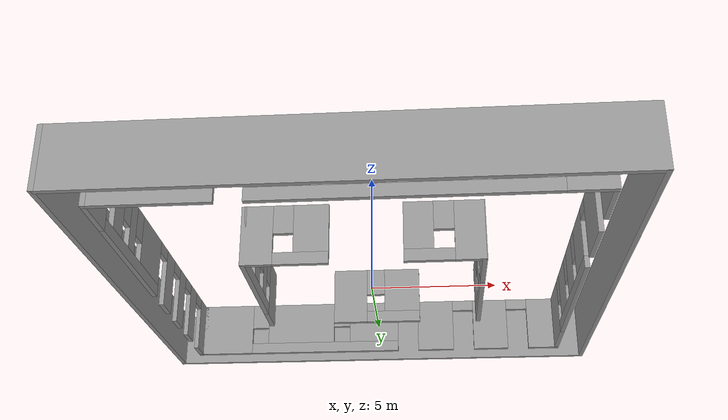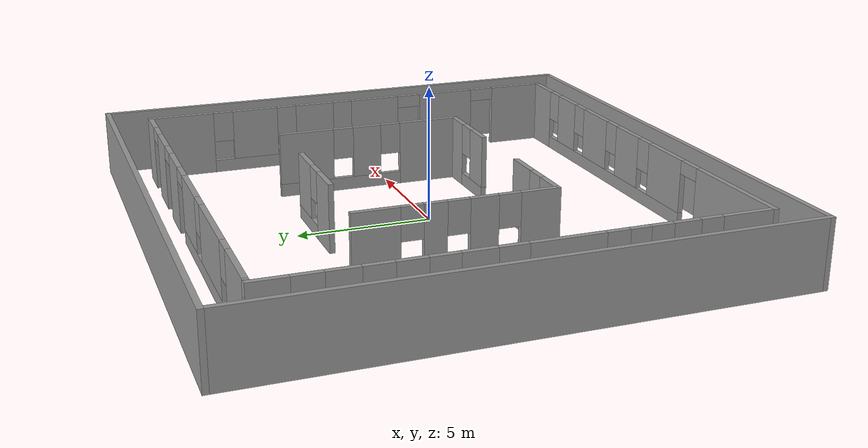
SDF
<?xml version='1.0'?>
<sdf version='1.4'>
  <model name='SalaSuporteFormacao2'>
    <link name='Wall_18'>
      <pose>-0.259506 8.74323 0 0 -0 0</pose>
      <visual name='Wall_18_Visual_0'>
        <pose>-7.57134 0 1.25 0 -0 0</pose>
        <geometry>
          <box>
            <size>2.5159 0.2 2.5</size>
          </box>
        </geometry>
        <material>
          <script>
            <uri>file://media/materials/scripts/gazebo.material</uri>
            <name>Gazebo/Grey</name>
          </script>
        </material>
      </visual>
      <collision name='Wall_18_Collision_0'>
        <geometry>
          <box>
            <size>2.5159 0.2 2.5</size>
          </box>
        </geometry>
        <pose>-7.57134 0 1.25 0 -0 0</pose>
      </collision>
      <visual name='Wall_18_Visual_1'>
        <pose>2.85613 0 1.25 0 -0 0</pose>
        <geometry>
          <box>
            <size>1.73545 0.2 2.5</size>
          </box>
        </geometry>
        <material>
          <script>
            <uri>file://media/materials/scripts/gazebo.material</uri>
            <name>Gazebo/Grey</name>
          </script>
        </material>
      </visual>
      <collision name='Wall_18_Collision_1'>
        <geometry>
          <box>
            <size>1.73545 0.2 2.5</size>
          </box>
        </geometry>
        <pose>2.85613 0 1.25 0 -0 0</pose>
      </collision>
      <visual name='Wall_18_Visual_2'>
        <pose>5.55135 0 1.25 0 -0 0</pose>
        <geometry>
          <box>
            <size>1.65499 0.2 2.5</size>
          </box>
        </geometry>
        <material>
          <script>
            <uri>file://media/materials/scripts/gazebo.material</uri>
            <name>Gazebo/Grey</name>
          </script>
        </material>
      </visual>
      <collision name='Wall_18_Collision_2'>
        <geometry>
          <box>
            <size>1.65499 0.2 2.5</size>
          </box>
        </geometry>
        <pose>5.55135 0 1.25 0 -0 0</pose>
      </collision>
      <visual name='Wall_18_Visual_3'>
        <pose>8.10407 0 1.25 0 -0 0</pose>
        <geometry>
          <box>
            <size>1.45045 0.2 2.5</size>
          </box>
        </geometry>
        <material>
          <script>
            <uri>file://media/materials/scripts/gazebo.material</uri>
            <name>Gazebo/Grey</name>
          </script>
        </material>
      </visual>
      <collision name='Wall_18_Collision_3'>
        <geometry>
          <box>
            <size>1.45045 0.2 2.5</size>
          </box>
        </geometry>
        <pose>8.10407 0 1.25 0 -0 0</pose>
      </collision>
      <visual name='Wall_18_Visual_4'>
        <pose>-2.66249 0 0.25 0 -0 0</pose>
        <geometry>
          <box>
            <size>7.30179 0.2 0.5</size>
          </box>
        </geometry>
        <material>
          <script>
            <uri>file://media/materials/scripts/gazebo.material</uri>
            <name>Gazebo/Grey</name>
          </script>
        </material>
      </visual>
      <collision name='Wall_18_Collision_4'>
        <geometry>
          <box>
            <size>7.30179 0.2 0.5</size>
          </box>
        </geometry>
        <pose>-2.66249 0 0.25 0 -0 0</pose>
      </collision>
      <visual name='Wall_18_Visual_5'>
        <pose>-3.86181 0 1.5 0 -0 0</pose>
        <geometry>
          <box>
            <size>3.30317 0.2 2</size>
          </box>
        </geometry>
        <material>
          <script>
            <uri>file://media/materials/scripts/gazebo.material</uri>
            <name>Gazebo/Grey</name>
          </script>
        </material>
      </visual>
      <collision name='Wall_18_Collision_5'>
        <geometry>
          <box>
            <size>3.30317 0.2 2</size>
          </box>
        </geometry>
        <pose>-3.86181 0 1.5 0 -0 0</pose>
      </collision>
      <visual name='Wall_18_Visual_6'>
        <pose>-0.210909 0 1.5 0 -0 0</pose>
        <geometry>
          <box>
            <size>2.39863 0.2 2</size>
          </box>
        </geometry>
        <material>
          <script>
            <uri>file://media/materials/scripts/gazebo.material</uri>
            <name>Gazebo/Grey</name>
          </script>
        </material>
      </visual>
      <collision name='Wall_18_Collision_6'>
        <geometry>
          <box>
            <size>2.39863 0.2 2</size>
          </box>
        </geometry>
        <pose>-0.210909 0 1.5 0 -0 0</pose>
      </collision>
      <visual name='Wall_18_Visual_7'>
        <pose>-5.91339 0 1.9 0 -0 0</pose>
        <geometry>
          <box>
            <size>0.8 0.2 1.2</size>
          </box>
        </geometry>
        <material>
          <script>
            <uri>file://media/materials/scripts/gazebo.material</uri>
            <name>Gazebo/Grey</name>
          </script>
        </material>
      </visual>
      <collision name='Wall_18_Collision_7'>
        <geometry>
          <box>
            <size>0.8 0.2 1.2</size>
          </box>
        </geometry>
        <pose>-5.91339 0 1.9 0 -0 0</pose>
      </collision>
      <visual name='Wall_18_Visual_8'>
        <pose>-1.81022 0 1.9 0 -0 0</pose>
        <geometry>
          <box>
            <size>0.8 0.2 1.2</size>
          </box>
        </geometry>
        <material>
          <script>
            <uri>file://media/materials/scripts/gazebo.material</uri>
            <name>Gazebo/Grey</name>
          </script>
        </material>
      </visual>
      <collision name='Wall_18_Collision_8'>
        <geometry>
          <box>
            <size>0.8 0.2 1.2</size>
          </box>
        </geometry>
        <pose>-1.81022 0 1.9 0 -0 0</pose>
      </collision>
      <visual name='Wall_18_Visual_9'>
        <pose>4.22385 0 2.25 0 -0 0</pose>
        <geometry>
          <box>
            <size>1 0.2 0.5</size>
          </box>
        </geometry>
        <material>
          <script>
            <uri>file://media/materials/scripts/gazebo.material</uri>
            <name>Gazebo/Grey</name>
          </script>
        </material>
      </visual>
      <collision name='Wall_18_Collision_9'>
        <geometry>
          <box>
            <size>1 0.2 0.5</size>
          </box>
        </geometry>
        <pose>4.22385 0 2.25 0 -0 0</pose>
      </collision>
      <visual name='Wall_18_Visual_10'>
        <pose>6.87884 0 2.25 0 -0 0</pose>
        <geometry>
          <box>
            <size>1 0.2 0.5</size>
          </box>
        </geometry>
        <material>
          <script>
            <uri>file://media/materials/scripts/gazebo.material</uri>
            <name>Gazebo/Grey</name>
          </script>
        </material>
      </visual>
      <collision name='Wall_18_Collision_10'>
        <geometry>
          <box>
            <size>1 0.2 0.5</size>
          </box>
        </geometry>
        <pose>6.87884 0 2.25 0 -0 0</pose>
      </collision>
      <visual name='Wall_18_Visual_11'>
        <pose>1.4884 0 2.25 0 -0 0</pose>
        <geometry>
          <box>
            <size>1 0.2 0.5</size>
          </box>
        </geometry>
        <material>
          <script>
            <uri>file://media/materials/scripts/gazebo.material</uri>
            <name>Gazebo/Grey</name>
          </script>
        </material>
      </visual>
      <collision name='Wall_18_Collision_11'>
        <geometry>
          <box>
            <size>1 0.2 0.5</size>
          </box>
        </geometry>
        <pose>1.4884 0 2.25 0 -0 0</pose>
      </collision>
    </link>
    <link name='Wall_19'>
      <pose>8.46978 0.215071 0 0 0 -1.5708</pose>
      <visual name='Wall_19_Visual_0'>
        <pose>-7.32998 0 1.25 0 -0 0</pose>
        <geometry>
          <box>
            <size>2.59635 0.2 2.5</size>
          </box>
        </geometry>
        <material>
          <script>
            <uri>file://media/materials/scripts/gazebo.material</uri>
            <name>Gazebo/Grey</name>
          </script>
        </material>
      </visual>
      <collision name='Wall_19_Collision_0'>
        <geometry>
          <box>
            <size>2.59635 0.2 2.5</size>
          </box>
        </geometry>
        <pose>-7.32998 0 1.25 0 -0 0</pose>
      </collision>
      <visual name='Wall_19_Visual_1'>
        <pose>4.10317 0 1.25 0 -0 0</pose>
        <geometry>
          <box>
            <size>2.37908 0.2 2.5</size>
          </box>
        </geometry>
        <material>
          <script>
            <uri>file://media/materials/scripts/gazebo.material</uri>
            <name>Gazebo/Grey</name>
          </script>
        </material>
      </visual>
      <collision name='Wall_19_Collision_1'>
        <geometry>
          <box>
            <size>2.37908 0.2 2.5</size>
          </box>
        </geometry>
        <pose>4.10317 0 1.25 0 -0 0</pose>
      </collision>
      <visual name='Wall_19_Visual_2'>
        <pose>7.46043 0 1.25 0 -0 0</pose>
        <geometry>
          <box>
            <size>2.33545 0.2 2.5</size>
          </box>
        </geometry>
        <material>
          <script>
            <uri>file://media/materials/scripts/gazebo.material</uri>
            <name>Gazebo/Grey</name>
          </script>
        </material>
      </visual>
      <collision name='Wall_19_Collision_2'>
        <geometry>
          <box>
            <size>2.33545 0.2 2.5</size>
          </box>
        </geometry>
        <pose>7.46043 0 1.25 0 -0 0</pose>
      </collision>
      <visual name='Wall_19_Visual_3'>
        <pose>-2.05909 0 0.25 0 -0 0</pose>
        <geometry>
          <box>
            <size>7.94543 0.2 0.5</size>
          </box>
        </geometry>
        <material>
          <script>
            <uri>file://media/materials/scripts/gazebo.material</uri>
            <name>Gazebo/Grey</name>
          </script>
        </material>
      </visual>
      <collision name='Wall_19_Collision_3'>
        <geometry>
          <box>
            <size>7.94543 0.2 0.5</size>
          </box>
        </geometry>
        <pose>-2.05909 0 0.25 0 -0 0</pose>
      </collision>
      <visual name='Wall_19_Visual_4'>
        <pose>-4.3043 0 1.5 0 -0 0</pose>
        <geometry>
          <box>
            <size>1.85499 0.2 2</size>
          </box>
        </geometry>
        <material>
          <script>
            <uri>file://media/materials/scripts/gazebo.material</uri>
            <name>Gazebo/Grey</name>
          </script>
        </material>
      </visual>
      <collision name='Wall_19_Collision_4'>
        <geometry>
          <box>
            <size>1.85499 0.2 2</size>
          </box>
        </geometry>
        <pose>-4.3043 0 1.5 0 -0 0</pose>
      </collision>
      <visual name='Wall_19_Visual_5'>
        <pose>-1.76999 0 1.5 0 -0 0</pose>
        <geometry>
          <box>
            <size>1.61363 0.2 2</size>
          </box>
        </geometry>
        <material>
          <script>
            <uri>file://media/materials/scripts/gazebo.material</uri>
            <name>Gazebo/Grey</name>
          </script>
        </material>
      </visual>
      <collision name='Wall_19_Collision_5'>
        <geometry>
          <box>
            <size>1.61363 0.2 2</size>
          </box>
        </geometry>
        <pose>-1.76999 0 1.5 0 -0 0</pose>
      </collision>
      <visual name='Wall_19_Visual_6'>
        <pose>0.875224 0 1.5 0 -0 0</pose>
        <geometry>
          <box>
            <size>2.07681 0.2 2</size>
          </box>
        </geometry>
        <material>
          <script>
            <uri>file://media/materials/scripts/gazebo.material</uri>
            <name>Gazebo/Grey</name>
          </script>
        </material>
      </visual>
      <collision name='Wall_19_Collision_6'>
        <geometry>
          <box>
            <size>2.07681 0.2 2</size>
          </box>
        </geometry>
        <pose>0.875224 0 1.5 0 -0 0</pose>
      </collision>
      <visual name='Wall_19_Visual_7'>
        <pose>-5.6318 0 1.9 0 -0 0</pose>
        <geometry>
          <box>
            <size>0.8 0.2 1.2</size>
          </box>
        </geometry>
        <material>
          <script>
            <uri>file://media/materials/scripts/gazebo.material</uri>
            <name>Gazebo/Grey</name>
          </script>
        </material>
      </visual>
      <collision name='Wall_19_Collision_7'>
        <geometry>
          <box>
            <size>0.8 0.2 1.2</size>
          </box>
        </geometry>
        <pose>-5.6318 0 1.9 0 -0 0</pose>
      </collision>
      <visual name='Wall_19_Visual_8'>
        <pose>-2.97681 0 1.9 0 -0 0</pose>
        <geometry>
          <box>
            <size>0.8 0.2 1.2</size>
          </box>
        </geometry>
        <material>
          <script>
            <uri>file://media/materials/scripts/gazebo.material</uri>
            <name>Gazebo/Grey</name>
          </script>
        </material>
      </visual>
      <collision name='Wall_19_Collision_8'>
        <geometry>
          <box>
            <size>0.8 0.2 1.2</size>
          </box>
        </geometry>
        <pose>-2.97681 0 1.9 0 -0 0</pose>
      </collision>
      <visual name='Wall_19_Visual_9'>
        <pose>-0.56318 0 1.9 0 -0 0</pose>
        <geometry>
          <box>
            <size>0.8 0.2 1.2</size>
          </box>
        </geometry>
        <material>
          <script>
            <uri>file://media/materials/scripts/gazebo.material</uri>
            <name>Gazebo/Grey</name>
          </script>
        </material>
      </visual>
      <collision name='Wall_19_Collision_9'>
        <geometry>
          <box>
            <size>0.8 0.2 1.2</size>
          </box>
        </geometry>
        <pose>-0.56318 0 1.9 0 -0 0</pose>
      </collision>
      <visual name='Wall_19_Visual_10'>
        <pose>5.79271 0 2.25 0 -0 0</pose>
        <geometry>
          <box>
            <size>1 0.2 0.5</size>
          </box>
        </geometry>
        <material>
          <script>
            <uri>file://media/materials/scripts/gazebo.material</uri>
            <name>Gazebo/Grey</name>
          </script>
        </material>
      </visual>
      <collision name='Wall_19_Collision_10'>
        <geometry>
          <box>
            <size>1 0.2 0.5</size>
          </box>
        </geometry>
        <pose>5.79271 0 2.25 0 -0 0</pose>
      </collision>
      <visual name='Wall_19_Visual_11'>
        <pose>2.41363 0 2.25 0 -0 0</pose>
        <geometry>
          <box>
            <size>1 0.2 0.5</size>
          </box>
        </geometry>
        <material>
          <script>
            <uri>file://media/materials/scripts/gazebo.material</uri>
            <name>Gazebo/Grey</name>
          </script>
        </material>
      </visual>
      <collision name='Wall_19_Collision_11'>
        <geometry>
          <box>
            <size>1 0.2 0.5</size>
          </box>
        </geometry>
        <pose>2.41363 0 2.25 0 -0 0</pose>
      </collision>
    </link>
    <link name='Wall_20'>
      <pose>-0.339961 -8.31308 0 0 -0 3.14159</pose>
      <visual name='Wall_20_Visual_0'>
        <pose>-8.05407 0 1.25 0 -0 0</pose>
        <geometry>
          <box>
            <size>1.71136 0.2 2.5</size>
          </box>
        </geometry>
        <material>
          <script>
            <uri>file://media/materials/scripts/gazebo.material</uri>
            <name>Gazebo/Grey</name>
          </script>
        </material>
      </visual>
      <collision name='Wall_20_Collision_0'>
        <geometry>
          <box>
            <size>1.71136 0.2 2.5</size>
          </box>
        </geometry>
        <pose>-8.05407 0 1.25 0 -0 0</pose>
      </collision>
      <visual name='Wall_20_Visual_1'>
        <pose>6.65589 0 1.25 0 -0 0</pose>
        <geometry>
          <box>
            <size>4.50771 0.2 2.5</size>
          </box>
        </geometry>
        <material>
          <script>
            <uri>file://media/materials/scripts/gazebo.material</uri>
            <name>Gazebo/Grey</name>
          </script>
        </material>
      </visual>
      <collision name='Wall_20_Collision_1'>
        <geometry>
          <box>
            <size>4.50771 0.2 2.5</size>
          </box>
        </geometry>
        <pose>6.65589 0 1.25 0 -0 0</pose>
      </collision>
      <visual name='Wall_20_Visual_2'>
        <pose>-1.89818 0 0.25 0 -0 0</pose>
        <geometry>
          <box>
            <size>10.6004 0.2 0.5</size>
          </box>
        </geometry>
        <material>
          <script>
            <uri>file://media/materials/scripts/gazebo.material</uri>
            <name>Gazebo/Grey</name>
          </script>
        </material>
      </visual>
      <collision name='Wall_20_Collision_2'>
        <geometry>
          <box>
            <size>10.6004 0.2 0.5</size>
          </box>
        </geometry>
        <pose>-1.89818 0 0.25 0 -0 0</pose>
      </collision>
      <visual name='Wall_20_Visual_3'>
        <pose>-5.6318 0 1.5 0 -0 0</pose>
        <geometry>
          <box>
            <size>1.53317 0.2 2</size>
          </box>
        </geometry>
        <material>
          <script>
            <uri>file://media/materials/scripts/gazebo.material</uri>
            <name>Gazebo/Grey</name>
          </script>
        </material>
      </visual>
      <collision name='Wall_20_Collision_3'>
        <geometry>
          <box>
            <size>1.53317 0.2 2</size>
          </box>
        </geometry>
        <pose>-5.6318 0 1.5 0 -0 0</pose>
      </collision>
      <visual name='Wall_20_Visual_4'>
        <pose>-3.09749 0 1.5 0 -0 0</pose>
        <geometry>
          <box>
            <size>1.93545 0.2 2</size>
          </box>
        </geometry>
        <material>
          <script>
            <uri>file://media/materials/scripts/gazebo.material</uri>
            <name>Gazebo/Grey</name>
          </script>
        </material>
      </visual>
      <collision name='Wall_20_Collision_4'>
        <geometry>
          <box>
            <size>1.93545 0.2 2</size>
          </box>
        </geometry>
        <pose>-3.09749 0 1.5 0 -0 0</pose>
      </collision>
      <visual name='Wall_20_Visual_5'>
        <pose>-0.482726 0 1.5 0 -0 0</pose>
        <geometry>
          <box>
            <size>1.69408 0.2 2</size>
          </box>
        </geometry>
        <material>
          <script>
            <uri>file://media/materials/scripts/gazebo.material</uri>
            <name>Gazebo/Grey</name>
          </script>
        </material>
      </visual>
      <collision name='Wall_20_Collision_5'>
        <geometry>
          <box>
            <size>1.69408 0.2 2</size>
          </box>
        </geometry>
        <pose>-0.482726 0 1.5 0 -0 0</pose>
      </collision>
      <visual name='Wall_20_Visual_6'>
        <pose>2.28317 0 1.5 0 -0 0</pose>
        <geometry>
          <box>
            <size>2.23772 0.2 2</size>
          </box>
        </geometry>
        <material>
          <script>
            <uri>file://media/materials/scripts/gazebo.material</uri>
            <name>Gazebo/Grey</name>
          </script>
        </material>
      </visual>
      <collision name='Wall_20_Collision_6'>
        <geometry>
          <box>
            <size>2.23772 0.2 2</size>
          </box>
        </geometry>
        <pose>2.28317 0 1.5 0 -0 0</pose>
      </collision>
      <visual name='Wall_20_Visual_7'>
        <pose>-6.79839 0 1.9 0 -0 0</pose>
        <geometry>
          <box>
            <size>0.8 0.2 1.2</size>
          </box>
        </geometry>
        <material>
          <script>
            <uri>file://media/materials/scripts/gazebo.material</uri>
            <name>Gazebo/Grey</name>
          </script>
        </material>
      </visual>
      <collision name='Wall_20_Collision_7'>
        <geometry>
          <box>
            <size>0.8 0.2 1.2</size>
          </box>
        </geometry>
        <pose>-6.79839 0 1.9 0 -0 0</pose>
      </collision>
      <visual name='Wall_20_Visual_8'>
        <pose>-4.46521 0 1.9 0 -0 0</pose>
        <geometry>
          <box>
            <size>0.8 0.2 1.2</size>
          </box>
        </geometry>
        <material>
          <script>
            <uri>file://media/materials/scripts/gazebo.material</uri>
            <name>Gazebo/Grey</name>
          </script>
        </material>
      </visual>
      <collision name='Wall_20_Collision_8'>
        <geometry>
          <box>
            <size>0.8 0.2 1.2</size>
          </box>
        </geometry>
        <pose>-4.46521 0 1.9 0 -0 0</pose>
      </collision>
      <visual name='Wall_20_Visual_9'>
        <pose>-1.72977 0 1.9 0 -0 0</pose>
        <geometry>
          <box>
            <size>0.8 0.2 1.2</size>
          </box>
        </geometry>
        <material>
          <script>
            <uri>file://media/materials/scripts/gazebo.material</uri>
            <name>Gazebo/Grey</name>
          </script>
        </material>
      </visual>
      <collision name='Wall_20_Collision_9'>
        <geometry>
          <box>
            <size>0.8 0.2 1.2</size>
          </box>
        </geometry>
        <pose>-1.72977 0 1.9 0 -0 0</pose>
      </collision>
      <visual name='Wall_20_Visual_10'>
        <pose>0.764316 0 1.9 0 -0 0</pose>
        <geometry>
          <box>
            <size>0.8 0.2 1.2</size>
          </box>
        </geometry>
        <material>
          <script>
            <uri>file://media/materials/scripts/gazebo.material</uri>
            <name>Gazebo/Grey</name>
          </script>
        </material>
      </visual>
      <collision name='Wall_20_Collision_10'>
        <geometry>
          <box>
            <size>0.8 0.2 1.2</size>
          </box>
        </geometry>
        <pose>0.764316 0 1.9 0 -0 0</pose>
      </collision>
      <visual name='Wall_20_Visual_11'>
        <pose>3.90203 0 2.25 0 -0 0</pose>
        <geometry>
          <box>
            <size>1 0.2 0.5</size>
          </box>
        </geometry>
        <material>
          <script>
            <uri>file://media/materials/scripts/gazebo.material</uri>
            <name>Gazebo/Grey</name>
          </script>
        </material>
      </visual>
      <collision name='Wall_20_Collision_11'>
        <geometry>
          <box>
            <size>1 0.2 0.5</size>
          </box>
        </geometry>
        <pose>3.90203 0 2.25 0 -0 0</pose>
      </collision>
    </link>
    <link name='Wall_21'>
      <pose>-9.14971 0.215071 0 0 -0 1.5708</pose>
      <visual name='Wall_21_Visual_0'>
        <pose>-7.61157 0 1.25 0 -0 0</pose>
        <geometry>
          <box>
            <size>2.03317 0.2 2.5</size>
          </box>
        </geometry>
        <material>
          <script>
            <uri>file://media/materials/scripts/gazebo.material</uri>
            <name>Gazebo/Grey</name>
          </script>
        </material>
      </visual>
      <collision name='Wall_21_Collision_0'>
        <geometry>
          <box>
            <size>2.03317 0.2 2.5</size>
          </box>
        </geometry>
        <pose>-7.61157 0 1.25 0 -0 0</pose>
      </collision>
      <visual name='Wall_21_Visual_1'>
        <pose>1.64931 0 1.25 0 -0 0</pose>
        <geometry>
          <box>
            <size>1.17227 0.2 2.5</size>
          </box>
        </geometry>
        <material>
          <script>
            <uri>file://media/materials/scripts/gazebo.material</uri>
            <name>Gazebo/Grey</name>
          </script>
        </material>
      </visual>
      <collision name='Wall_21_Collision_1'>
        <geometry>
          <box>
            <size>1.17227 0.2 2.5</size>
          </box>
        </geometry>
        <pose>1.64931 0 1.25 0 -0 0</pose>
      </collision>
      <visual name='Wall_21_Visual_2'>
        <pose>3.74112 0 1.25 0 -0 0</pose>
        <geometry>
          <box>
            <size>1.01136 0.2 2.5</size>
          </box>
        </geometry>
        <material>
          <script>
            <uri>file://media/materials/scripts/gazebo.material</uri>
            <name>Gazebo/Grey</name>
          </script>
        </material>
      </visual>
      <collision name='Wall_21_Collision_2'>
        <geometry>
          <box>
            <size>1.01136 0.2 2.5</size>
          </box>
        </geometry>
        <pose>3.74112 0 1.25 0 -0 0</pose>
      </collision>
      <visual name='Wall_21_Visual_3'>
        <pose>5.79271 0 1.25 0 -0 0</pose>
        <geometry>
          <box>
            <size>1.09181 0.2 2.5</size>
          </box>
        </geometry>
        <material>
          <script>
            <uri>file://media/materials/scripts/gazebo.material</uri>
            <name>Gazebo/Grey</name>
          </script>
        </material>
      </visual>
      <collision name='Wall_21_Collision_3'>
        <geometry>
          <box>
            <size>1.09181 0.2 2.5</size>
          </box>
        </geometry>
        <pose>5.79271 0 1.25 0 -0 0</pose>
      </collision>
      <visual name='Wall_21_Visual_4'>
        <pose>7.98338 0 1.25 0 -0 0</pose>
        <geometry>
          <box>
            <size>1.28954 0.2 2.5</size>
          </box>
        </geometry>
        <material>
          <script>
            <uri>file://media/materials/scripts/gazebo.material</uri>
            <name>Gazebo/Grey</name>
          </script>
        </material>
      </visual>
      <collision name='Wall_21_Collision_4'>
        <geometry>
          <box>
            <size>1.28954 0.2 2.5</size>
          </box>
        </geometry>
        <pose>7.98338 0 1.25 0 -0 0</pose>
      </collision>
      <visual name='Wall_21_Visual_5'>
        <pose>-3.2659 0 0.25 0 -0 0</pose>
        <geometry>
          <box>
            <size>6.65816 0.2 0.5</size>
          </box>
        </geometry>
        <material>
          <script>
            <uri>file://media/materials/scripts/gazebo.material</uri>
            <name>Gazebo/Grey</name>
          </script>
        </material>
      </visual>
      <collision name='Wall_21_Collision_5'>
        <geometry>
          <box>
            <size>6.65816 0.2 0.5</size>
          </box>
        </geometry>
        <pose>-3.2659 0 0.25 0 -0 0</pose>
      </collision>
      <visual name='Wall_21_Visual_6'>
        <pose>-5.30998 0 1.5 0 -0 0</pose>
        <geometry>
          <box>
            <size>0.969994 0.2 2</size>
          </box>
        </geometry>
        <material>
          <script>
            <uri>file://media/materials/scripts/gazebo.material</uri>
            <name>Gazebo/Grey</name>
          </script>
        </material>
      </visual>
      <collision name='Wall_21_Collision_6'>
        <geometry>
          <box>
            <size>0.969994 0.2 2</size>
          </box>
        </geometry>
        <pose>-5.30998 0 1.5 0 -0 0</pose>
      </collision>
      <visual name='Wall_21_Visual_7'>
        <pose>-3.66067 0 1.5 0 -0 0</pose>
        <geometry>
          <box>
            <size>0.728631 0.2 2</size>
          </box>
        </geometry>
        <material>
          <script>
            <uri>file://media/materials/scripts/gazebo.material</uri>
            <name>Gazebo/Grey</name>
          </script>
        </material>
      </visual>
      <collision name='Wall_21_Collision_7'>
        <geometry>
          <box>
            <size>0.728631 0.2 2</size>
          </box>
        </geometry>
        <pose>-3.66067 0 1.5 0 -0 0</pose>
      </collision>
      <visual name='Wall_21_Visual_8'>
        <pose>-1.21659 0 1.5 0 -0 0</pose>
        <geometry>
          <box>
            <size>2.55953 0.2 2</size>
          </box>
        </geometry>
        <material>
          <script>
            <uri>file://media/materials/scripts/gazebo.material</uri>
            <name>Gazebo/Grey</name>
          </script>
        </material>
      </visual>
      <collision name='Wall_21_Collision_8'>
        <geometry>
          <box>
            <size>2.55953 0.2 2</size>
          </box>
        </geometry>
        <pose>-1.21659 0 1.5 0 -0 0</pose>
      </collision>
      <visual name='Wall_21_Visual_9'>
        <pose>-6.19498 0 1.9 0 -0 0</pose>
        <geometry>
          <box>
            <size>0.8 0.2 1.2</size>
          </box>
        </geometry>
        <material>
          <script>
            <uri>file://media/materials/scripts/gazebo.material</uri>
            <name>Gazebo/Grey</name>
          </script>
        </material>
      </visual>
      <collision name='Wall_21_Collision_9'>
        <geometry>
          <box>
            <size>0.8 0.2 1.2</size>
          </box>
        </geometry>
        <pose>-6.19498 0 1.9 0 -0 0</pose>
      </collision>
      <visual name='Wall_21_Visual_10'>
        <pose>-4.42499 0 1.9 0 -0 0</pose>
        <geometry>
          <box>
            <size>0.8 0.2 1.2</size>
          </box>
        </geometry>
        <material>
          <script>
            <uri>file://media/materials/scripts/gazebo.material</uri>
            <name>Gazebo/Grey</name>
          </script>
        </material>
      </visual>
      <collision name='Wall_21_Collision_10'>
        <geometry>
          <box>
            <size>0.8 0.2 1.2</size>
          </box>
        </geometry>
        <pose>-4.42499 0 1.9 0 -0 0</pose>
      </collision>
      <visual name='Wall_21_Visual_11'>
        <pose>-2.89635 0 1.9 0 -0 0</pose>
        <geometry>
          <box>
            <size>0.8 0.2 1.2</size>
          </box>
        </geometry>
        <material>
          <script>
            <uri>file://media/materials/scripts/gazebo.material</uri>
            <name>Gazebo/Grey</name>
          </script>
        </material>
      </visual>
      <collision name='Wall_21_Collision_11'>
        <geometry>
          <box>
            <size>0.8 0.2 1.2</size>
          </box>
        </geometry>
        <pose>-2.89635 0 1.9 0 -0 0</pose>
      </collision>
      <visual name='Wall_21_Visual_12'>
        <pose>2.73545 0 2.25 0 -0 0</pose>
        <geometry>
          <box>
            <size>1 0.2 0.5</size>
          </box>
        </geometry>
        <material>
          <script>
            <uri>file://media/materials/scripts/gazebo.material</uri>
            <name>Gazebo/Grey</name>
          </script>
        </material>
      </visual>
      <collision name='Wall_21_Collision_12'>
        <geometry>
          <box>
            <size>1 0.2 0.5</size>
          </box>
        </geometry>
        <pose>2.73545 0 2.25 0 -0 0</pose>
      </collision>
      <visual name='Wall_21_Visual_13'>
        <pose>4.7468 0 2.25 0 -0 0</pose>
        <geometry>
          <box>
            <size>1 0.2 0.5</size>
          </box>
        </geometry>
        <material>
          <script>
            <uri>file://media/materials/scripts/gazebo.material</uri>
            <name>Gazebo/Grey</name>
          </script>
        </material>
      </visual>
      <collision name='Wall_21_Collision_13'>
        <geometry>
          <box>
            <size>1 0.2 0.5</size>
          </box>
        </geometry>
        <pose>4.7468 0 2.25 0 -0 0</pose>
      </collision>
      <visual name='Wall_21_Visual_14'>
        <pose>6.83861 0 2.25 0 -0 0</pose>
        <geometry>
          <box>
            <size>1 0.2 0.5</size>
          </box>
        </geometry>
        <material>
          <script>
            <uri>file://media/materials/scripts/gazebo.material</uri>
            <name>Gazebo/Grey</name>
          </script>
        </material>
      </visual>
      <collision name='Wall_21_Collision_14'>
        <geometry>
          <box>
            <size>1 0.2 0.5</size>
          </box>
        </geometry>
        <pose>6.83861 0 2.25 0 -0 0</pose>
      </collision>
      <visual name='Wall_21_Visual_15'>
        <pose>0.56318 0 2.25 0 -0 0</pose>
        <geometry>
          <box>
            <size>1 0.2 0.5</size>
          </box>
        </geometry>
        <material>
          <script>
            <uri>file://media/materials/scripts/gazebo.material</uri>
            <name>Gazebo/Grey</name>
          </script>
        </material>
      </visual>
      <collision name='Wall_21_Collision_15'>
        <geometry>
          <box>
            <size>1 0.2 0.5</size>
          </box>
        </geometry>
        <pose>0.56318 0 2.25 0 -0 0</pose>
      </collision>
    </link>
    <link name='Wall_22'>
      <collision name='Wall_22_Collision'>
        <geometry>
          <box>
            <size>0.360909 0.2 2.5</size>
          </box>
        </geometry>
        <pose>0 0 1.25 0 -0 0</pose>
      </collision>
      <visual name='Wall_22_Visual'>
        <pose>0 0 1.25 0 -0 0</pose>
        <geometry>
          <box>
            <size>0.360909 0.2 2.5</size>
          </box>
        </geometry>
        <material>
          <script>
            <uri>file://media/materials/scripts/gazebo.material</uri>
            <name>Gazebo/Grey</name>
          </script>
        </material>
      </visual>
      <velocity_decay>
        <linear>0</linear>
        <angular>0</angular>
      </velocity_decay>
      <pose>-9.06925 8.74323 0 0 -0 0</pose>
    </link>
    <link name='Wall_26'>
      <pose>-4.8575 0.82437 0 0 0 -1.5708</pose>
      <visual name='Wall_26_Visual_0'>
        <pose>-2.84409 0 1.25 0 -0 0</pose>
        <geometry>
          <box>
            <size>1.68165 0.2 2.5</size>
          </box>
        </geometry>
        <material>
          <script>
            <uri>file://media/materials/scripts/gazebo.material</uri>
            <name>Gazebo/Grey</name>
          </script>
        </material>
      </visual>
      <collision name='Wall_26_Collision_0'>
        <geometry>
          <box>
            <size>1.68165 0.2 2.5</size>
          </box>
        </geometry>
        <pose>-2.84409 0 1.25 0 -0 0</pose>
      </collision>
      <visual name='Wall_26_Visual_1'>
        <pose>0.840823 0 0.25 0 -0 0</pose>
        <geometry>
          <box>
            <size>5.68817 0.2 0.5</size>
          </box>
        </geometry>
        <material>
          <script>
            <uri>file://media/materials/scripts/gazebo.material</uri>
            <name>Gazebo/Grey</name>
          </script>
        </material>
      </visual>
      <collision name='Wall_26_Collision_1'>
        <geometry>
          <box>
            <size>5.68817 0.2 0.5</size>
          </box>
        </geometry>
        <pose>0.840823 0 0.25 0 -0 0</pose>
      </collision>
      <visual name='Wall_26_Visual_2'>
        <pose>-0.795957 0 1.5 0 -0 0</pose>
        <geometry>
          <box>
            <size>0.814611 0.2 2</size>
          </box>
        </geometry>
        <material>
          <script>
            <uri>file://media/materials/scripts/gazebo.material</uri>
            <name>Gazebo/Grey</name>
          </script>
        </material>
      </visual>
      <collision name='Wall_26_Collision_2'>
        <geometry>
          <box>
            <size>0.814611 0.2 2</size>
          </box>
        </geometry>
        <pose>-0.795957 0 1.5 0 -0 0</pose>
      </collision>
      <visual name='Wall_26_Visual_3'>
        <pose>0.920988 0 1.5 0 -0 0</pose>
        <geometry>
          <box>
            <size>1.01928 0.2 2</size>
          </box>
        </geometry>
        <material>
          <script>
            <uri>file://media/materials/scripts/gazebo.material</uri>
            <name>Gazebo/Grey</name>
          </script>
        </material>
      </visual>
      <collision name='Wall_26_Collision_3'>
        <geometry>
          <box>
            <size>1.01928 0.2 2</size>
          </box>
        </geometry>
        <pose>0.920988 0 1.5 0 -0 0</pose>
      </collision>
      <visual name='Wall_26_Visual_4'>
        <pose>2.95777 0 1.5 0 -0 0</pose>
        <geometry>
          <box>
            <size>1.45428 0.2 2</size>
          </box>
        </geometry>
        <material>
          <script>
            <uri>file://media/materials/scripts/gazebo.material</uri>
            <name>Gazebo/Grey</name>
          </script>
        </material>
      </visual>
      <collision name='Wall_26_Collision_4'>
        <geometry>
          <box>
            <size>1.45428 0.2 2</size>
          </box>
        </geometry>
        <pose>2.95777 0 1.5 0 -0 0</pose>
      </collision>
      <visual name='Wall_26_Visual_5'>
        <pose>-1.60326 0 1.9 0 -0 0</pose>
        <geometry>
          <box>
            <size>0.8 0.2 1.2</size>
          </box>
        </geometry>
        <material>
          <script>
            <uri>file://media/materials/scripts/gazebo.material</uri>
            <name>Gazebo/Grey</name>
          </script>
        </material>
      </visual>
      <collision name='Wall_26_Collision_5'>
        <geometry>
          <box>
            <size>0.8 0.2 1.2</size>
          </box>
        </geometry>
        <pose>-1.60326 0 1.9 0 -0 0</pose>
      </collision>
      <visual name='Wall_26_Visual_6'>
        <pose>0.011348 0 1.9 0 -0 0</pose>
        <geometry>
          <box>
            <size>0.8 0.2 1.2</size>
          </box>
        </geometry>
        <material>
          <script>
            <uri>file://media/materials/scripts/gazebo.material</uri>
            <name>Gazebo/Grey</name>
          </script>
        </material>
      </visual>
      <collision name='Wall_26_Collision_6'>
        <geometry>
          <box>
            <size>0.8 0.2 1.2</size>
          </box>
        </geometry>
        <pose>0.011348 0 1.9 0 -0 0</pose>
      </collision>
      <visual name='Wall_26_Visual_7'>
        <pose>1.83063 0 1.9 0 -0 0</pose>
        <geometry>
          <box>
            <size>0.8 0.2 1.2</size>
          </box>
        </geometry>
        <material>
          <script>
            <uri>file://media/materials/scripts/gazebo.material</uri>
            <name>Gazebo/Grey</name>
          </script>
        </material>
      </visual>
      <collision name='Wall_26_Collision_7'>
        <geometry>
          <box>
            <size>0.8 0.2 1.2</size>
          </box>
        </geometry>
        <pose>1.83063 0 1.9 0 -0 0</pose>
      </collision>
    </link>
    <link name='Wall_27'>
      <pose>-3.22423 -2.76054 0 0 -0 0</pose>
      <visual name='Wall_27_Visual_0'>
        <pose>-1.09793 0 1.25 0 -0 0</pose>
        <geometry>
          <box>
            <size>1.27067 0.2 2.5</size>
          </box>
        </geometry>
        <material>
          <script>
            <uri>file://media/materials/scripts/gazebo.material</uri>
            <name>Gazebo/Grey</name>
          </script>
        </material>
      </visual>
      <collision name='Wall_27_Collision_0'>
        <geometry>
          <box>
            <size>1.27067 0.2 2.5</size>
          </box>
        </geometry>
        <pose>-1.09793 0 1.25 0 -0 0</pose>
      </collision>
      <visual name='Wall_27_Visual_1'>
        <pose>0.635337 0 0.25 0 -0 0</pose>
        <geometry>
          <box>
            <size>2.19587 0.2 0.5</size>
          </box>
        </geometry>
        <material>
          <script>
            <uri>file://media/materials/scripts/gazebo.material</uri>
            <name>Gazebo/Grey</name>
          </script>
        </material>
      </visual>
      <collision name='Wall_27_Collision_1'>
        <geometry>
          <box>
            <size>2.19587 0.2 0.5</size>
          </box>
        </geometry>
        <pose>0.635337 0 0.25 0 -0 0</pose>
      </collision>
      <visual name='Wall_27_Visual_2'>
        <pose>1.03534 0 1.5 0 -0 0</pose>
        <geometry>
          <box>
            <size>1.39587 0.2 2</size>
          </box>
        </geometry>
        <material>
          <script>
            <uri>file://media/materials/scripts/gazebo.material</uri>
            <name>Gazebo/Grey</name>
          </script>
        </material>
      </visual>
      <collision name='Wall_27_Collision_2'>
        <geometry>
          <box>
            <size>1.39587 0.2 2</size>
          </box>
        </geometry>
        <pose>1.03534 0 1.5 0 -0 0</pose>
      </collision>
      <visual name='Wall_27_Visual_3'>
        <pose>-0.062596 0 1.9 0 -0 0</pose>
        <geometry>
          <box>
            <size>0.8 0.2 1.2</size>
          </box>
        </geometry>
        <material>
          <script>
            <uri>file://media/materials/scripts/gazebo.material</uri>
            <name>Gazebo/Grey</name>
          </script>
        </material>
      </visual>
      <collision name='Wall_27_Collision_3'>
        <geometry>
          <box>
            <size>0.8 0.2 1.2</size>
          </box>
        </geometry>
        <pose>-0.062596 0 1.9 0 -0 0</pose>
      </collision>
    </link>
    <link name='Wall_30'>
      <pose>2.97615 -2.76054 0 0 -0 3.14159</pose>
      <visual name='Wall_30_Visual_0'>
        <pose>-0.98642 0 1.25 0 -0 0</pose>
        <geometry>
          <box>
            <size>1.19124 0.2 2.5</size>
          </box>
        </geometry>
        <material>
          <script>
            <uri>file://media/materials/scripts/gazebo.material</uri>
            <name>Gazebo/Grey</name>
          </script>
        </material>
      </visual>
      <collision name='Wall_30_Collision_0'>
        <geometry>
          <box>
            <size>1.19124 0.2 2.5</size>
          </box>
        </geometry>
        <pose>-0.98642 0 1.25 0 -0 0</pose>
      </collision>
      <visual name='Wall_30_Visual_1'>
        <pose>0.595621 0 0.25 0 -0 0</pose>
        <geometry>
          <box>
            <size>1.97284 0.2 0.5</size>
          </box>
        </geometry>
        <material>
          <script>
            <uri>file://media/materials/scripts/gazebo.material</uri>
            <name>Gazebo/Grey</name>
          </script>
        </material>
      </visual>
      <collision name='Wall_30_Collision_1'>
        <geometry>
          <box>
            <size>1.97284 0.2 0.5</size>
          </box>
        </geometry>
        <pose>0.595621 0 0.25 0 -0 0</pose>
      </collision>
      <visual name='Wall_30_Visual_2'>
        <pose>0.995621 0 1.5 0 -0 0</pose>
        <geometry>
          <box>
            <size>1.17284 0.2 2</size>
          </box>
        </geometry>
        <material>
          <script>
            <uri>file://media/materials/scripts/gazebo.material</uri>
            <name>Gazebo/Grey</name>
          </script>
        </material>
      </visual>
      <collision name='Wall_30_Collision_2'>
        <geometry>
          <box>
            <size>1.17284 0.2 2</size>
          </box>
        </geometry>
        <pose>0.995621 0 1.5 0 -0 0</pose>
      </collision>
      <visual name='Wall_30_Visual_3'>
        <pose>0.009201 0 1.9 0 -0 0</pose>
        <geometry>
          <box>
            <size>0.8 0.2 1.2</size>
          </box>
        </geometry>
        <material>
          <script>
            <uri>file://media/materials/scripts/gazebo.material</uri>
            <name>Gazebo/Grey</name>
          </script>
        </material>
      </visual>
      <collision name='Wall_30_Collision_3'>
        <geometry>
          <box>
            <size>0.8 0.2 1.2</size>
          </box>
        </geometry>
        <pose>0.009201 0 1.9 0 -0 0</pose>
      </collision>
    </link>
    <link name='Wall_32'>
      <pose>4.48844 0.803851 0 0 -0 1.5708</pose>
      <visual name='Wall_32_Visual_0'>
        <pose>-2.43695 0 1.25 0 -0 0</pose>
        <geometry>
          <box>
            <size>2.45488 0.2 2.5</size>
          </box>
        </geometry>
        <material>
          <script>
            <uri>file://media/materials/scripts/gazebo.material</uri>
            <name>Gazebo/Grey</name>
          </script>
        </material>
      </visual>
      <collision name='Wall_32_Collision_0'>
        <geometry>
          <box>
            <size>2.45488 0.2 2.5</size>
          </box>
        </geometry>
        <pose>-2.43695 0 1.25 0 -0 0</pose>
      </collision>
      <visual name='Wall_32_Visual_1'>
        <pose>1.22744 0 0.25 0 -0 0</pose>
        <geometry>
          <box>
            <size>4.87389 0.2 0.5</size>
          </box>
        </geometry>
        <material>
          <script>
            <uri>file://media/materials/scripts/gazebo.material</uri>
            <name>Gazebo/Grey</name>
          </script>
        </material>
      </visual>
      <collision name='Wall_32_Collision_1'>
        <geometry>
          <box>
            <size>4.87389 0.2 0.5</size>
          </box>
        </geometry>
        <pose>1.22744 0 0.25 0 -0 0</pose>
      </collision>
      <visual name='Wall_32_Visual_2'>
        <pose>0.156988 0 1.5 0 -0 0</pose>
        <geometry>
          <box>
            <size>1.13298 0.2 2</size>
          </box>
        </geometry>
        <material>
          <script>
            <uri>file://media/materials/scripts/gazebo.material</uri>
            <name>Gazebo/Grey</name>
          </script>
        </material>
      </visual>
      <collision name='Wall_32_Collision_2'>
        <geometry>
          <box>
            <size>1.13298 0.2 2</size>
          </box>
        </geometry>
        <pose>0.156988 0 1.5 0 -0 0</pose>
      </collision>
      <visual name='Wall_32_Visual_3'>
        <pose>2.59393 0 1.5 0 -0 0</pose>
        <geometry>
          <box>
            <size>2.14091 0.2 2</size>
          </box>
        </geometry>
        <material>
          <script>
            <uri>file://media/materials/scripts/gazebo.material</uri>
            <name>Gazebo/Grey</name>
          </script>
        </material>
      </visual>
      <collision name='Wall_32_Collision_3'>
        <geometry>
          <box>
            <size>2.14091 0.2 2</size>
          </box>
        </geometry>
        <pose>2.59393 0 1.5 0 -0 0</pose>
      </collision>
      <visual name='Wall_32_Visual_4'>
        <pose>-0.809504 0 1.9 0 -0 0</pose>
        <geometry>
          <box>
            <size>0.8 0.2 1.2</size>
          </box>
        </geometry>
        <material>
          <script>
            <uri>file://media/materials/scripts/gazebo.material</uri>
            <name>Gazebo/Grey</name>
          </script>
        </material>
      </visual>
      <collision name='Wall_32_Collision_4'>
        <geometry>
          <box>
            <size>0.8 0.2 1.2</size>
          </box>
        </geometry>
        <pose>-0.809504 0 1.9 0 -0 0</pose>
      </collision>
      <visual name='Wall_32_Visual_5'>
        <pose>1.12348 0 1.9 0 -0 0</pose>
        <geometry>
          <box>
            <size>0.8 0.2 1.2</size>
          </box>
        </geometry>
        <material>
          <script>
            <uri>file://media/materials/scripts/gazebo.material</uri>
            <name>Gazebo/Grey</name>
          </script>
        </material>
      </visual>
      <collision name='Wall_32_Collision_5'>
        <geometry>
          <box>
            <size>0.8 0.2 1.2</size>
          </box>
        </geometry>
        <pose>1.12348 0 1.9 0 -0 0</pose>
      </collision>
    </link>
    <link name='Wall_40'>
      <pose>-0.055819 4.28854 0 0 -0 0</pose>
      <visual name='Wall_40_Visual_0'>
        <pose>-1.19196 0 1.25 0 -0 0</pose>
        <geometry>
          <box>
            <size>1.48938 0.2 2.5</size>
          </box>
        </geometry>
        <material>
          <script>
            <uri>file://media/materials/scripts/gazebo.material</uri>
            <name>Gazebo/Grey</name>
          </script>
        </material>
      </visual>
      <collision name='Wall_40_Collision_0'>
        <geometry>
          <box>
            <size>1.48938 0.2 2.5</size>
          </box>
        </geometry>
        <pose>-1.19196 0 1.25 0 -0 0</pose>
      </collision>
      <visual name='Wall_40_Visual_1'>
        <pose>0.744689 0 0.25 0 -0 0</pose>
        <geometry>
          <box>
            <size>2.38391 0.2 0.5</size>
          </box>
        </geometry>
        <material>
          <script>
            <uri>file://media/materials/scripts/gazebo.material</uri>
            <name>Gazebo/Grey</name>
          </script>
        </material>
      </visual>
      <collision name='Wall_40_Collision_1'>
        <geometry>
          <box>
            <size>2.38391 0.2 0.5</size>
          </box>
        </geometry>
        <pose>0.744689 0 0.25 0 -0 0</pose>
      </collision>
      <visual name='Wall_40_Visual_2'>
        <pose>1.14469 0 1.5 0 -0 0</pose>
        <geometry>
          <box>
            <size>1.58391 0.2 2</size>
          </box>
        </geometry>
        <material>
          <script>
            <uri>file://media/materials/scripts/gazebo.material</uri>
            <name>Gazebo/Grey</name>
          </script>
        </material>
      </visual>
      <collision name='Wall_40_Collision_2'>
        <geometry>
          <box>
            <size>1.58391 0.2 2</size>
          </box>
        </geometry>
        <pose>1.14469 0 1.5 0 -0 0</pose>
      </collision>
      <visual name='Wall_40_Visual_3'>
        <pose>-0.047267 0 1.9 0 -0 0</pose>
        <geometry>
          <box>
            <size>0.8 0.2 1.2</size>
          </box>
        </geometry>
        <material>
          <script>
            <uri>file://media/materials/scripts/gazebo.material</uri>
            <name>Gazebo/Grey</name>
          </script>
        </material>
      </visual>
      <collision name='Wall_40_Collision_3'>
        <geometry>
          <box>
            <size>0.8 0.2 1.2</size>
          </box>
        </geometry>
        <pose>-0.047267 0 1.9 0 -0 0</pose>
      </collision>
    </link>
    <link name='Wall_6'>
      <collision name='Wall_6_Collision'>
        <geometry>
          <box>
            <size>19.9714 0.2 2.5</size>
          </box>
        </geometry>
        <pose>0 0 1.25 0 -0 0</pose>
      </collision>
      <visual name='Wall_6_Visual'>
        <pose>0 0 1.25 0 -0 0</pose>
        <geometry>
          <box>
            <size>19.9714 0.2 2.5</size>
          </box>
        </geometry>
        <material>
          <script>
            <uri>file://media/materials/scripts/gazebo.material</uri>
            <name>Gazebo/Grey</name>
          </script>
        </material>
      </visual>
      <velocity_decay>
        <linear>0</linear>
        <angular>0</angular>
      </velocity_decay>
      <pose>-10.416 0.379888 0 0 -0 1.5708</pose>
    </link>
    <link name='Wall_7'>
      <collision name='Wall_7_Collision'>
        <geometry>
          <box>
            <size>20.4581 0.2 2.5</size>
          </box>
        </geometry>
        <pose>0 0 1.25 0 -0 0</pose>
      </collision>
      <visual name='Wall_7_Visual'>
        <pose>0 0 1.25 0 -0 0</pose>
        <geometry>
          <box>
            <size>20.4581 0.2 2.5</size>
          </box>
        </geometry>
        <material>
          <script>
            <uri>file://media/materials/scripts/gazebo.material</uri>
            <name>Gazebo/Grey</name>
          </script>
        </material>
      </visual>
      <velocity_decay>
        <linear>0</linear>
        <angular>0</angular>
      </velocity_decay>
      <pose>-0.287014 10.2656 0 0 -0 0</pose>
    </link>
    <link name='Wall_8'>
      <collision name='Wall_8_Collision'>
        <geometry>
          <box>
            <size>19.9714 0.2 2.5</size>
          </box>
        </geometry>
        <pose>0 0 1.25 0 -0 0</pose>
      </collision>
      <visual name='Wall_8_Visual'>
        <pose>0 0 1.25 0 -0 0</pose>
        <geometry>
          <box>
            <size>19.9714 0.2 2.5</size>
          </box>
        </geometry>
        <material>
          <script>
            <uri>file://media/materials/scripts/gazebo.material</uri>
            <name>Gazebo/Grey</name>
          </script>
        </material>
      </visual>
      <velocity_decay>
        <linear>0</linear>
        <angular>0</angular>
      </velocity_decay>
      <pose>9.84201 0.379888 0 0 0 -1.5708</pose>
    </link>
    <link name='Wall_9'>
      <collision name='Wall_9_Collision'>
        <geometry>
          <box>
            <size>20.4581 0.2 2.5</size>
          </box>
        </geometry>
        <pose>0 0 1.25 0 -0 0</pose>
      </collision>
      <visual name='Wall_9_Visual'>
        <pose>0 0 1.25 0 -0 0</pose>
        <geometry>
          <box>
            <size>20.4581 0.2 2.5</size>
          </box>
        </geometry>
        <material>
          <script>
            <uri>file://media/materials/scripts/gazebo.material</uri>
            <name>Gazebo/Grey</name>
          </script>
        </material>
      </visual>
      <velocity_decay>
        <linear>0</linear>
        <angular>0</angular>
      </velocity_decay>
      <pose>-0.287014 -9.5058 0 0 -0 3.14159</pose>
    </link>
    <static>1</static>
  </model>
</sdf>
